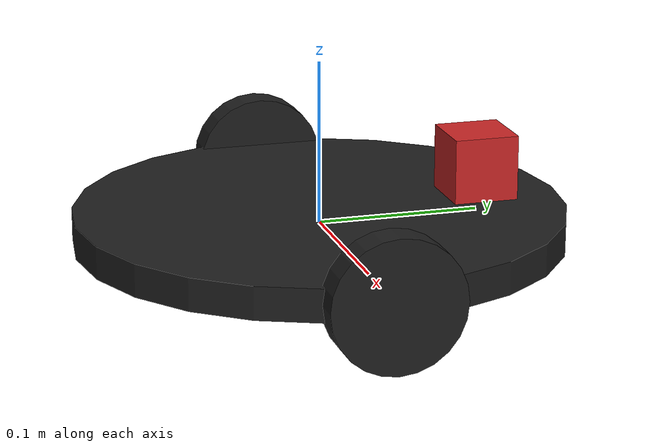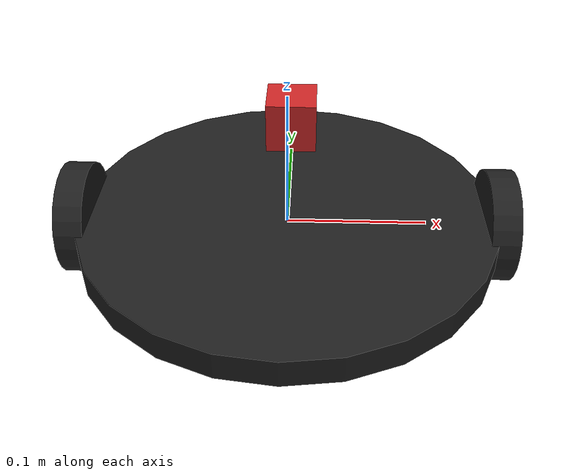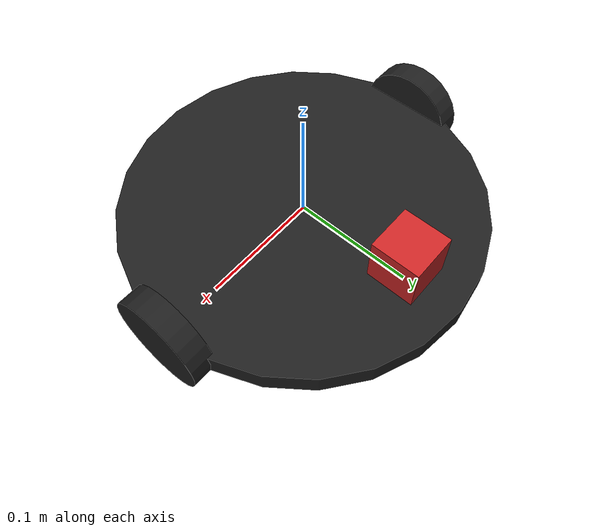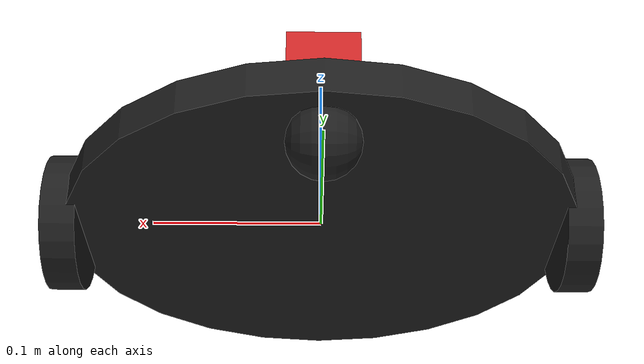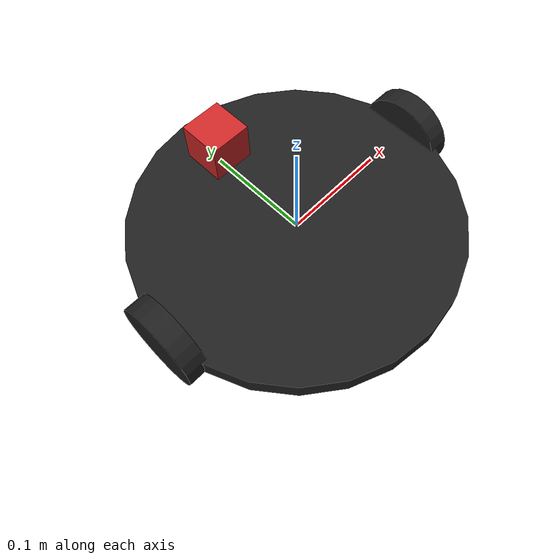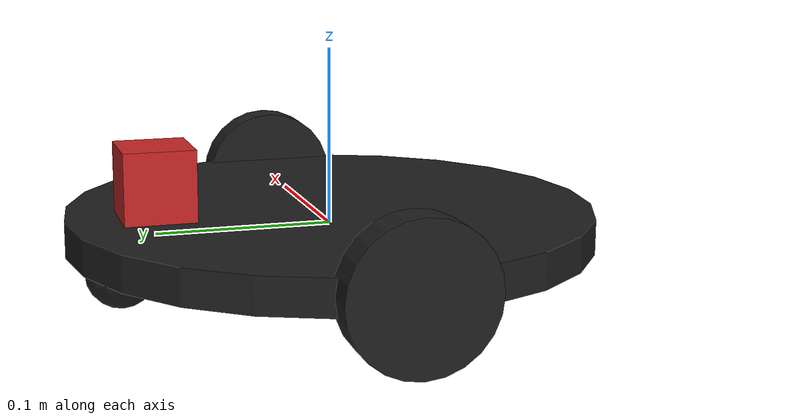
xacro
<?xml version="1.0"?>
<robot xmlns:xacro="http://www.ros.org/wiki/xacro" name="robot"  >

<!-- property of base_link -->
<xacro:property name="base_link_length" value="0.02"/>
<xacro:property name="base_link_radius" value="0.15"/>

<!-- property of laser_scan-->
<xacro:property name="joint_y_laser_scan" value="0.1"/>
<xacro:property name="joint_z_laser_scan" value="0.03"/>
<!-- property of wheel-->
<xacro:property name="wheel_pitch" value="1.57"/>
<xacro:property name="wheel_length" value="0.02"/>
<xacro:property name="wheel_radius" value="0.04"/>

<!-- propery of wheel_joint-->
<xacro:property name="wheel_joint" value="0.15"/>
<xacro:property name="wheel_axis" value="1"/>
<xacro:property name="effort" value="300"/>
<xacro:property name="velocity" value="0.5"/>
<xacro:property name="lower" value="-3.14"/>
<xacro:property name="upper" value="3.14"/>

<!-- property of caster-->
<xacro:property name="caster_radius" value="0.02"/>
<xacro:property name="caster_joint_y" value="0.12"/>
<xacro:property name="caster_joint_z" value="0.02"/>

<!--property of moment inertial-->
<xacro:property name="mass" value="5"/>
<xacro:property name="ixx" value="0.01"/>
<xacro:property name="iyy" value="0.01"/>
<xacro:property name="izz" value="0.01"/>

<xacro:property name="laser_scan_length" value="0.04"/>
<link name="dummy" >

</link>
<joint name="dummy_base_link" type="fixed">
	<parent link="dummy"/>
	<child link="base_link"/>
</joint>
<link name="base_link">
	<visual>
		<origin rpy="0 0 0" xyz="0 0 0"/>
		<geometry>
			<cylinder length="${base_link_length}" radius="${base_link_radius}" />
		</geometry>
	</visual>
	<collision>
		<origin rpy="0 0 0" xyz="0 0 0"/>
		<geometry>
			<cylinder length="${base_link_length}" radius="${base_link_radius}" />
		</geometry>
	</collision>
	<inertial>
		<mass value="${mass}"/>
		<origin xyz=" 0 0 0 "/>
		<inertia ixx="${ixx}" ixy="0" ixz="0" iyy="${iyy}" iyz="0" izz="${izz}"/>
	</inertial>
</link>

<link name="left_wheel">
	<visual>
		<origin rpy="0 ${wheel_pitch} 0" xyz="0 0 0"/>
		<geometry>
			<cylinder length="${wheel_length}" radius="${wheel_radius}"/>
		</geometry>
	</visual>
	<collision>
		<origin rpy="0 ${wheel_pitch} 0" xyz="0 0 0"/>
		<geometry>
			<cylinder length="${wheel_length}" radius="${wheel_radius}"/>
		</geometry>
	</collision>
	<inertial>
		<mass value="${mass}"/>
		<origin xyz=" 0 0 0 "/>
		<inertia ixx="${ixx}" ixy="0" ixz="0" iyy="${iyy}" iyz="0" izz="${izz}"/>
	</inertial>
</link>

<joint  name="base_link_left_wheel" type="continuous">
	<origin xyz="${-wheel_joint} 0 0" />
	<parent link="base_link"/>
	<child link="left_wheel"/>
	<axis xyz="${wheel_axis} 0 0 "/>
	<limit effort="${effort}" velocity="${velocity}" lower="${lower}" upper="${upper}"/>
</joint>

<link name="right_wheel">
	<visual>
		<origin rpy="0 ${wheel_pitch} 0" xyz="0 0 0"/>
		<geometry>
			<cylinder length="${wheel_length}" radius="${wheel_radius}"/>
		</geometry>
	</visual>
	<collision>
		<origin rpy="0 ${wheel_pitch} 0" xyz="0 0 0"/>
		<geometry>
			<cylinder length="${wheel_length}" radius="${wheel_radius}"/>
		</geometry>
	</collision>
	<inertial>
		<mass value="${mass}"/>
		<origin xyz=" 0 0 0 "/>
		<inertia ixx="${ixx}" ixy="0" ixz="0" iyy="${iyy}" iyz="0" izz="${izz}"/>
	</inertial>
</link>

<joint  name="base_link_right_wheel" type="continuous">
	<origin xyz="${wheel_joint} 0 0" />
	<parent link="base_link"/>
	<child link="right_wheel"/>
	<axis xyz="${wheel_axis} 0 0 "/>
	<limit effort="${effort}" velocity="${velocity}" lower="${lower}" upper="${upper}"/>
</joint>
<link name="caster">
	<visual>
		<origin rpy="0 ${wheel_pitch} 0" xyz="0 0 0"/>
		<geometry>
			<sphere radius="${caster_radius}"/>
		</geometry>
	</visual>
	<collision>
		<origin rpy="0 ${wheel_pitch} 0" xyz="0 0 0"/>
		<geometry>
			<sphere radius="${caster_radius}"/>
		</geometry>
	</collision>
	<inertial>
		<mass value="${mass}"/>
		<origin xyz=" 0 0 0 "/>
		<inertia ixx="${ixx}" ixy="0" ixz="0" iyy="${iyy}" iyz="0" izz="${izz}"/>
	</inertial>
</link>
<joint name="base_link_caster" type="continuous">
	<origin xyz="0 ${caster_joint_y} ${-caster_joint_z}"/>
	<parent link="base_link"/>
	<child link="caster"/>
	<axis xyz="${wheel_axis} 0 0 "/>
	<limit effort="${effort}" velocity="${velocity}" lower="${lower}" upper="${upper}"/>

</joint>

<gazebo  reference="base_link">
	<material>Gazebo/Black</material>
	<mu1 value="1.0"/>
	<mu2 value="1.0"/>
	<kp value="10000000.0" />
	<kd value="1.0" />
	<fdir1 value="1 0 0"/>
    <turnGravityOff>false</turnGravityOff>
</gazebo>

<gazebo  reference="caster">
	<material>Gazebo/Black</material>
	<mu1 value="1.0"/>
	<mu2 value="1.0"/>
	<kp value="10000000.0" />
	<kd value="1.0" />
	<fdir1 value="1 0 0"/>
    <turnGravityOff>false</turnGravityOff>
</gazebo>
<gazebo  reference="right_wheel">
	<material>Gazebo/Black</material>
	<mu1 value="1.0"/>
	<mu2 value="1.0"/>
	<kp value="10000000.0" />
	<kd value="1.0" />
	<fdir1 value="1 0 0"/>
    <turnGravityOff>false</turnGravityOff>
</gazebo>
<gazebo  reference="left_wheel">
	<material>Gazebo/Black</material>
	<mu1 value="1.0"/>
	<mu2 value="1.0"/>
	<kp value="10000000.0" />
	<kd value="1.0" />
	<fdir1 value="1 0 0"/>
    <turnGravityOff>false</turnGravityOff>
</gazebo>
<gazebo>
	<plugin  name="differential_drive_robot" filename="libgazebo_ros_diff_drive.so">
		<robotNamespace>/</robotNamespace>
		<commandTopic>cmd_vel</commandTopic>
		<odometryTopic>odom</odometryTopic>
		<odometryFrame>odom</odometryFrame>
		<robotBaseFrame>base_link</robotBaseFrame>
		<publishWheelTF>false</publishWheelTF>
		<publishOdomTF>true</publishOdomTF>
		<publishWheelJointState>false</publishWheelJointState>
		<legacyMode>true</legacyMode>

		<wheelSeparation>${2*base_link_radius}</wheelSeparation>
		<wheelDiameter>${2*wheel_radius}</wheelDiameter>
		<wheelAcceleration>1.0</wheelAcceleration>
		<wheelTorque>20.0</wheelTorque>
		<updateRate>10.0</updateRate>
		<leftJoint>base_link_left_wheel</leftJoint>
		<rightJoint>base_link_right_wheel</rightJoint>
	</plugin>

</gazebo>

<link name="laser_scan">
	<visual>
		<origin xyz="0 0 0" rpy="0 0 0"/>
		<geometry>
			<box size="${laser_scan_length} ${laser_scan_length} ${laser_scan_length}"/>
		</geometry>
	</visual>
</link>
<joint name="base_link_laser_scan" type="fixed">
	<origin xyz="0 ${joint_y_laser_scan} ${joint_z_laser_scan}" rpy="0 0 0"/>
	<parent link="base_link"/>
	<child link="laser_scan"/>
</joint>
<gazebo reference="laser_scan">
	<material>Gazebo/Red</material>
	<turnGravityOff>false</turnGravityOff>
	<sensor type="ray" name="laser_scan_sensor">
		<pose>0 ${laser_scan_length/2} 0 0 0 0 </pose>
		<visualize>true</visualize>
		<update_rate>10.0</update_rate>
		<ray>
			<scan>
				<horizontal>
					<sample>1000</sample>
					<resolution>1</resolution>
					<min_angle>0</min_angle>
					<max_angle>3.14</max_angle>
				</horizontal>
			</scan>
			<range>
				<min>0.1</min>
				<max>10</max>
				<resolution>1</resolution>
			</range>
		</ray>

		<plugin name="lase_scanner" filename="libgazebo_ros_laser.so">
			<topicName>/scan</topicName>
			<frameName>laser_scan</frameName>
		</plugin>
	</sensor>
</gazebo>
</robot>
